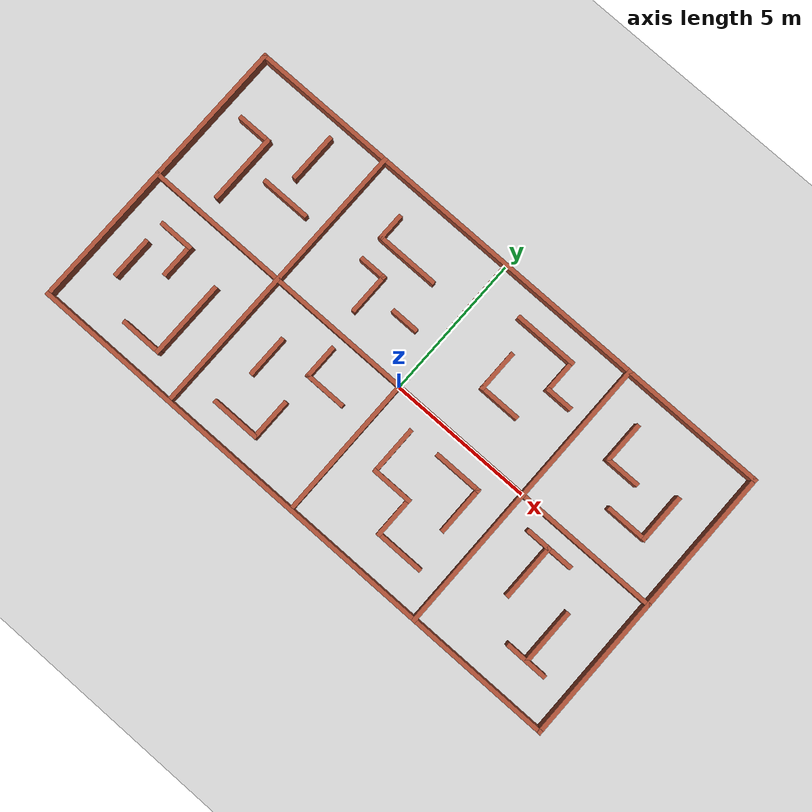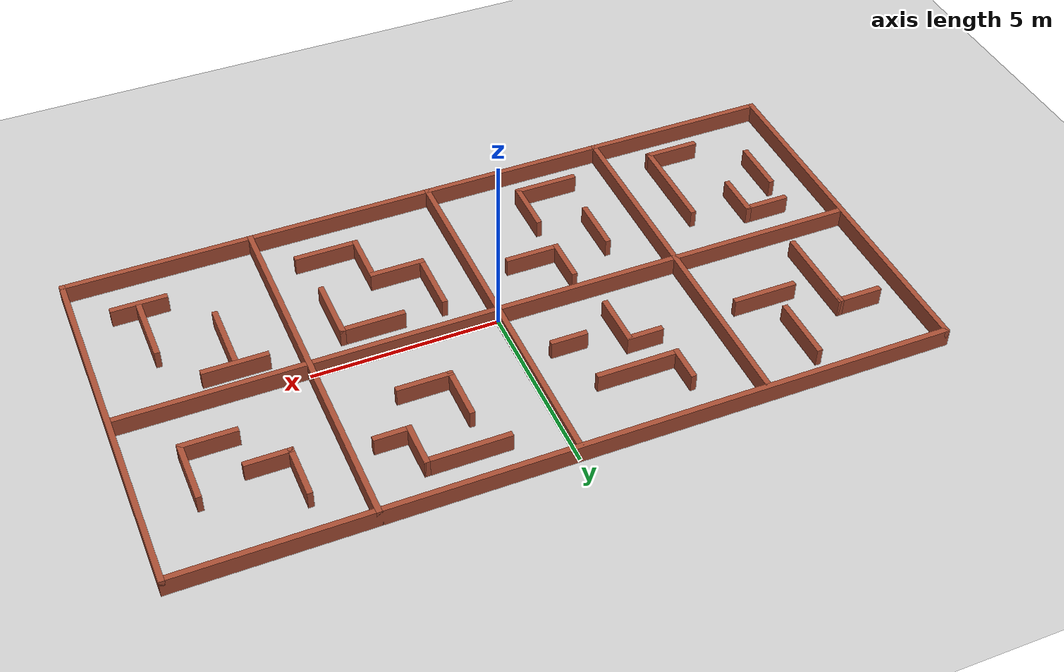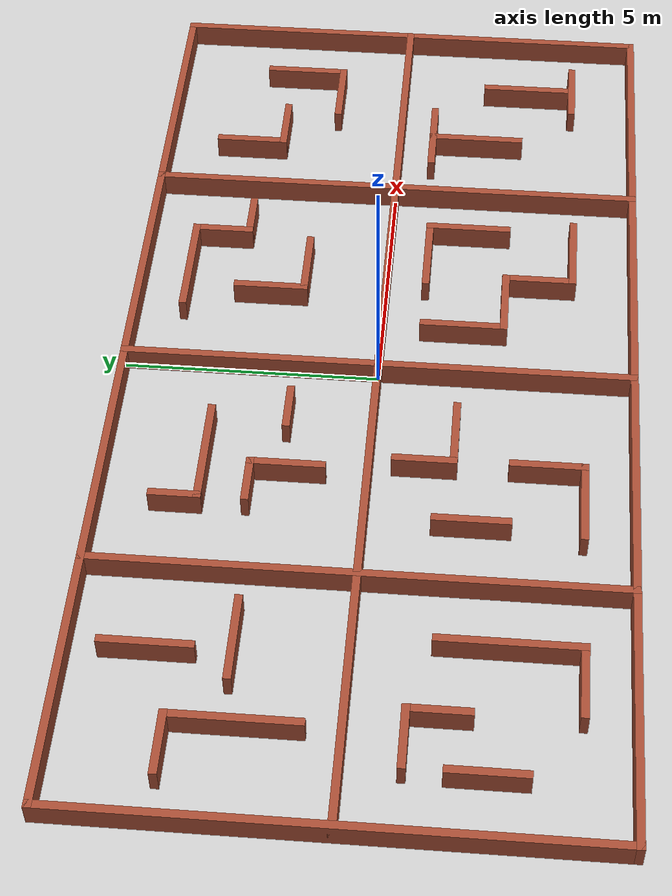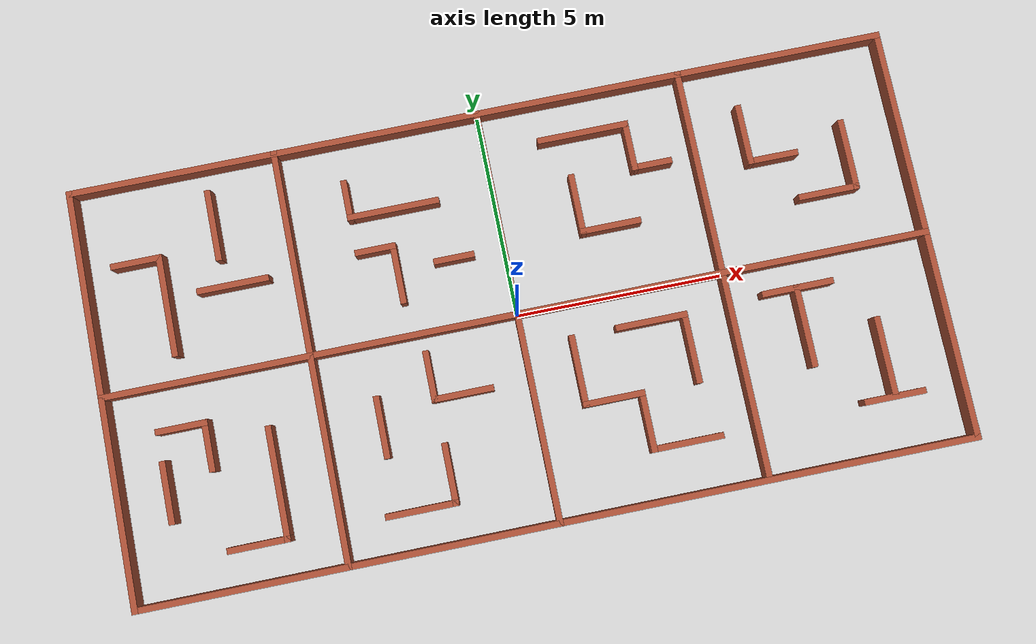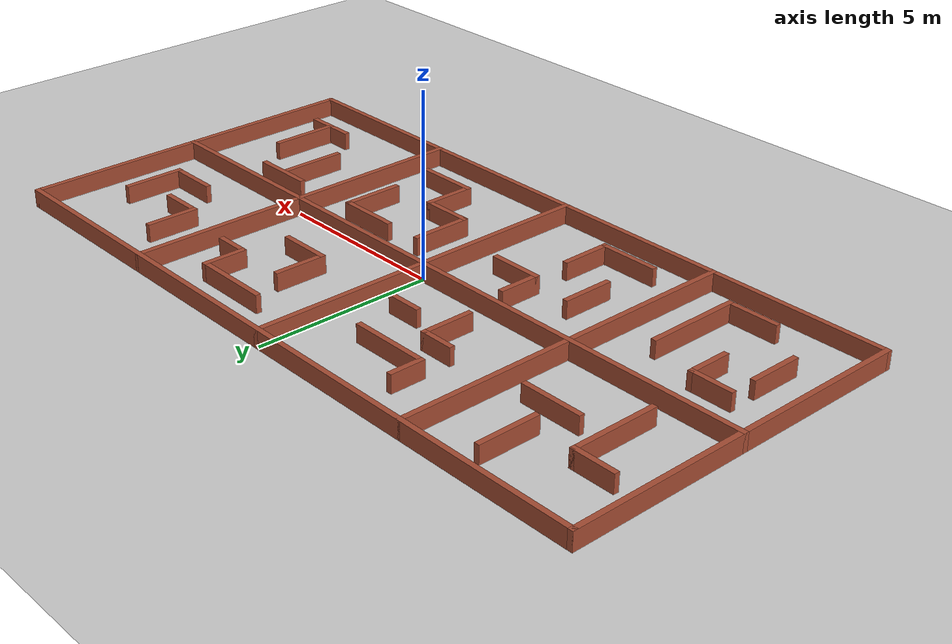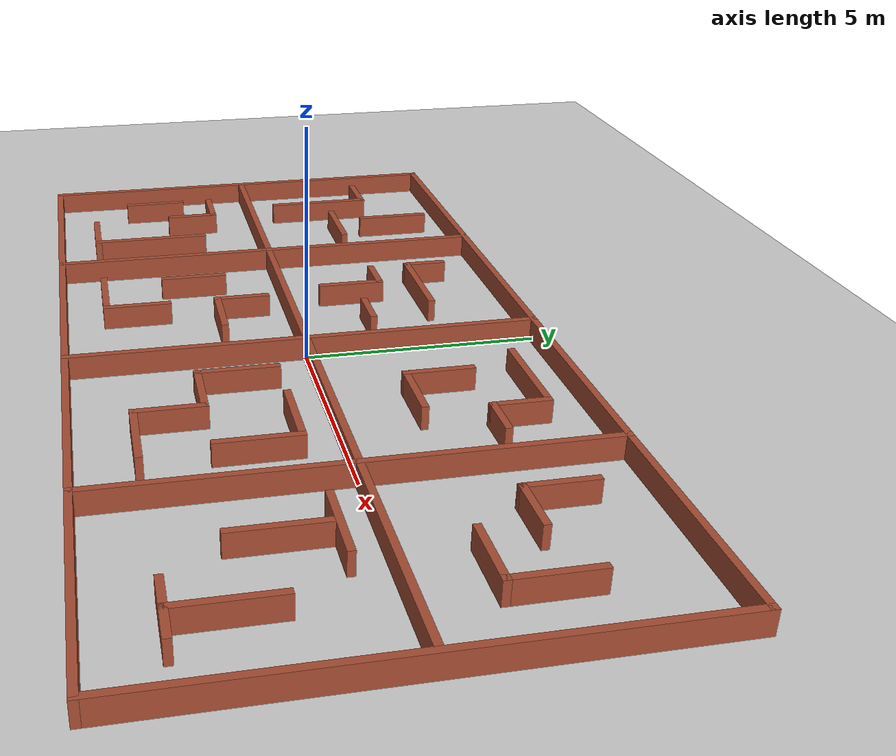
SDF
<sdf version="1.7">
 <world name="default">
  <light name="sun" type="directional">
   <pose>0 0 10 0 -0 0</pose>
   <diffuse>0.8 0.8 0.8 1</diffuse>
   <specular>0.2 0.2 0.2 1</specular>
   <attenuation>
    <range>1000</range>
    <constant>0.9</constant>
    <linear>0.01</linear>
    <quadratic>0.001</quadratic>
   </attenuation>
   <direction>-0.5 0.1 -0.9</direction>
   <spot><inner_angle>0</inner_angle><outer_angle>0</outer_angle><falloff>0</falloff></spot>
  </light>
  <model name="ground_plane">
   <static>1</static>
   <link name="link">
    <collision name="collision">
     <geometry><plane><normal>0 0 1</normal><size>100 100</size></plane></geometry>
     <surface>
      <contact><collide_bitmask>65535</collide_bitmask></contact>
      <friction><ode><mu>100</mu><mu2>50</mu2></ode></friction>
     </surface>
    </collision>
    <visual name="visual">
     <cast_shadows>0</cast_shadows>
     <geometry><plane><normal>0 0 1</normal><size>100 100</size></plane></geometry>
     <material>
      <script><uri>file://media/materials/scripts/gazebo.material</uri><name>Gazebo/Grey</name></script>
     </material>
    </visual>
   </link>
  </model>
  <gravity>0 0 -9.8</gravity>
  <magnetic_field>6e-06 2.3e-05 -4.2e-05</magnetic_field>
  <atmosphere type="adiabatic"/>
  <physics type="ode">
   <max_step_size>0.001</max_step_size>
   <real_time_factor>1</real_time_factor>
   <real_time_update_rate>1000</real_time_update_rate>
  </physics>
  <scene><ambient>0.4 0.4 0.4 1</ambient><background>0.7 0.7 0.7 1</background><shadows>1</shadows></scene>
  <spherical_coordinates>
   <surface_model>EARTH_WGS84</surface_model>
   <latitude_deg>0</latitude_deg>
   <longitude_deg>0</longitude_deg>
   <elevation>0</elevation>
   <heading_deg>0</heading_deg>
  </spherical_coordinates>
  <model name="turtlebot3_multi_map">
   <link name="Wall_11">
    <collision name="Wall_11_Collision">
     <geometry><box><size>10.15 0.15 0.5</size></box></geometry>
     <pose>0 0 0.25 0 -0 0</pose>
    </collision>
    <visual name="Wall_11_Visual">
     <pose>0 0 0.25 0 -0 0</pose>
     <geometry><box><size>10.15 0.15 0.5</size></box></geometry>
     <material>
      <script><uri>file://media/materials/scripts/gazebo.material</uri><name>Gazebo/Bricks</name></script>
      <ambient>1 1 1 1</ambient>
     </material>
     <meta><layer>0</layer></meta>
    </visual>
    <pose>5 0 0 0 -0 1.5708</pose>
   </link>
   <link name="Wall_13">
    <collision name="Wall_13_Collision">
     <geometry><box><size>10.15 0.15 0.5</size></box></geometry>
     <pose>0 0 0.25 0 -0 0</pose>
    </collision>
    <visual name="Wall_13_Visual">
     <pose>0 0 0.25 0 -0 0</pose>
     <geometry><box><size>10.15 0.15 0.5</size></box></geometry>
     <material>
      <script><uri>file://media/materials/scripts/gazebo.material</uri><name>Gazebo/Bricks</name></script>
      <ambient>1 1 1 1</ambient>
     </material>
     <meta><layer>0</layer></meta>
    </visual>
    <pose>0 0 0 0 -0 -1.5708</pose>
   </link>
   <link name="Wall_15">
    <collision name="Wall_15_Collision">
     <geometry><box><size>10.15 0.15 0.5</size></box></geometry>
     <pose>0 0 0.25 0 -0 0</pose>
    </collision>
    <visual name="Wall_15_Visual">
     <pose>0 0 0.25 0 -0 0</pose>
     <geometry><box><size>10.15 0.15 0.5</size></box></geometry>
     <material>
      <script><uri>file://media/materials/scripts/gazebo.material</uri><name>Gazebo/Bricks</name></script>
      <ambient>1 1 1 1</ambient>
     </material>
     <meta><layer>0</layer></meta>
    </visual>
    <pose>-5 0 0 0 -0 -1.5708</pose>
   </link>
   <link name="Wall_17">
    <collision name="Wall_17_Collision">
     <geometry><box><size>1.25 0.15 0.5</size></box></geometry>
     <pose>0 0 0.25 0 -0 0</pose>
    </collision>
    <visual name="Wall_17_Visual">
     <pose>0 0 0.25 0 -0 0</pose>
     <geometry><box><size>1.25 0.15 0.5</size></box></geometry>
     <material>
      <script><uri>file://media/materials/scripts/gazebo.material</uri><name>Gazebo/Bricks</name></script>
      <ambient>1 1 1 1</ambient>
     </material>
     <meta><layer>0</layer></meta>
    </visual>
    <pose>-8.68 3.043 0 0 -0 0</pose>
   </link>
   <link name="Wall_18">
    <collision name="Wall_18_Collision">
     <geometry><box><size>2.5 0.15 0.5</size></box></geometry>
     <pose>0 0 0.25 0 -0 0</pose>
    </collision>
    <visual name="Wall_18_Visual">
     <pose>0 0 0.25 0 -0 0</pose>
     <geometry><box><size>2.5 0.15 0.5</size></box></geometry>
     <material>
      <script><uri>file://media/materials/scripts/gazebo.material</uri><name>Gazebo/Bricks</name></script>
      <ambient>1 1 1 1</ambient>
     </material>
     <meta><layer>0</layer></meta>
    </visual>
    <pose>-8.13 1.868 0 0 -0 -1.5708</pose>
   </link>
   <link name="Wall_20">
    <collision name="Wall_20_Collision">
     <geometry><box><size>1.75 0.15 0.5</size></box></geometry>
     <pose>0 0 0.25 0 -0 0</pose>
    </collision>
    <visual name="Wall_20_Visual">
     <pose>0 0 0.25 0 -0 0</pose>
     <geometry><box><size>1.75 0.15 0.5</size></box></geometry>
     <material>
      <script><uri>file://media/materials/scripts/gazebo.material</uri><name>Gazebo/Bricks</name></script>
      <ambient>1 1 1 1</ambient>
     </material>
     <meta><layer>0</layer></meta>
    </visual>
    <pose>-6.51 2.048 0 0 -0 0</pose>
   </link>
   <link name="Wall_22">
    <collision name="Wall_22_Collision">
     <geometry><box><size>1.75 0.15 0.5</size></box></geometry>
     <pose>0 0 0.25 0 -0 0</pose>
    </collision>
    <visual name="Wall_22_Visual">
     <pose>0 0 0.25 0 -0 0</pose>
     <geometry><box><size>1.75 0.15 0.5</size></box></geometry>
     <material>
      <script><uri>file://media/materials/scripts/gazebo.material</uri><name>Gazebo/Bricks</name></script>
      <ambient>1 1 1 1</ambient>
     </material>
     <meta><layer>0</layer></meta>
    </visual>
    <pose>-6.732 3.561 0 0 -0 -1.5708</pose>
   </link>
   <link name="Wall_24">
    <collision name="Wall_24_Collision">
     <geometry><box><size>1 0.15 0.5</size></box></geometry>
     <pose>0 0 0.25 0 -0 0</pose>
    </collision>
    <visual name="Wall_24_Visual">
     <pose>0 0 0.25 0 -0 0</pose>
     <geometry><box><size>1 0.15 0.5</size></box></geometry>
     <material>
      <script><uri>file://media/materials/scripts/gazebo.material</uri><name>Gazebo/Bricks</name></script>
      <ambient>1 1 1 1</ambient>
     </material>
     <meta><layer>0</layer></meta>
    </visual>
    <pose>-3.471 3.52 0 0 -0 -1.5708</pose>
   </link>
   <link name="Wall_25">
    <collision name="Wall_25_Collision">
     <geometry><box><size>2.25 0.15 0.5</size></box></geometry>
     <pose>0 0 0.25 0 -0 0</pose>
    </collision>
    <visual name="Wall_25_Visual">
     <pose>0 0 0.25 0 -0 0</pose>
     <geometry><box><size>2.25 0.15 0.5</size></box></geometry>
     <material>
      <script><uri>file://media/materials/scripts/gazebo.material</uri><name>Gazebo/Bricks</name></script>
      <ambient>1 1 1 1</ambient>
     </material>
     <meta><layer>0</layer></meta>
    </visual>
    <pose>-2.421 3.095 0 0 -0 0</pose>
   </link>
   <link name="Wall_27">
    <collision name="Wall_27_Collision">
     <geometry><box><size>1 0.15 0.5</size></box></geometry>
     <pose>0 0 0.25 0 -0 0</pose>
    </collision>
    <visual name="Wall_27_Visual">
     <pose>0 0 0.25 0 -0 0</pose>
     <geometry><box><size>1 0.15 0.5</size></box></geometry>
     <material>
      <script><uri>file://media/materials/scripts/gazebo.material</uri><name>Gazebo/Bricks</name></script>
      <ambient>1 1 1 1</ambient>
     </material>
     <meta><layer>0</layer></meta>
    </visual>
    <pose>-3.023 2.21 0 0 -0 0</pose>
   </link>
   <link name="Wall_28">
    <collision name="Wall_28_Collision">
     <geometry><box><size>1.5 0.15 0.5</size></box></geometry>
     <pose>0 0 0.25 0 -0 0</pose>
    </collision>
    <visual name="Wall_28_Visual">
     <pose>0 0 0.25 0 -0 0</pose>
     <geometry><box><size>1.5 0.15 0.5</size></box></geometry>
     <material>
      <script><uri>file://media/materials/scripts/gazebo.material</uri><name>Gazebo/Bricks</name></script>
      <ambient>1 1 1 1</ambient>
     </material>
     <meta><layer>0</layer></meta>
    </visual>
    <pose>-2.598 1.535 0 0 -0 -1.5708</pose>
   </link>
   <link name="Wall_30">
    <collision name="Wall_30_Collision">
     <geometry><box><size>1 0.15 0.5</size></box></geometry>
     <pose>0 0 0.25 0 -0 0</pose>
    </collision>
    <visual name="Wall_30_Visual">
     <pose>0 0 0.25 0 -0 0</pose>
     <geometry><box><size>1 0.15 0.5</size></box></geometry>
     <material>
      <script><uri>file://media/materials/scripts/gazebo.material</uri><name>Gazebo/Bricks</name></script>
      <ambient>1 1 1 1</ambient>
     </material>
     <meta><layer>0</layer></meta>
    </visual>
    <pose>-1.218 1.632 0 0 -0 0</pose>
   </link>
   <link name="Wall_32">
    <collision name="Wall_32_Collision">
     <geometry><box><size>2.25 0.15 0.5</size></box></geometry>
     <pose>0 0 0.25 0 -0 0</pose>
    </collision>
    <visual name="Wall_32_Visual">
     <pose>0 0 0.25 0 -0 0</pose>
     <geometry><box><size>2.25 0.15 0.5</size></box></geometry>
     <material>
      <script><uri>file://media/materials/scripts/gazebo.material</uri><name>Gazebo/Bricks</name></script>
      <ambient>1 1 1 1</ambient>
     </material>
     <meta><layer>0</layer></meta>
    </visual>
    <pose>2.437 4.038 0 0 -0 0</pose>
   </link>
   <link name="Wall_33">
    <collision name="Wall_33_Collision">
     <geometry><box><size>1.25 0.15 0.5</size></box></geometry>
     <pose>0 0 0.25 0 -0 0</pose>
    </collision>
    <visual name="Wall_33_Visual">
     <pose>0 0 0.25 0 -0 0</pose>
     <geometry><box><size>1.25 0.15 0.5</size></box></geometry>
     <material>
      <script><uri>file://media/materials/scripts/gazebo.material</uri><name>Gazebo/Bricks</name></script>
      <ambient>1 1 1 1</ambient>
     </material>
     <meta><layer>0</layer></meta>
    </visual>
    <pose>3.487 3.488 0 0 -0 -1.5708</pose>
   </link>
   <link name="Wall_34">
    <collision name="Wall_34_Collision">
     <geometry><box><size>1 0.15 0.5</size></box></geometry>
     <pose>0 0 0.25 0 -0 0</pose>
    </collision>
    <visual name="Wall_34_Visual">
     <pose>0 0 0.25 0 -0 0</pose>
     <geometry><box><size>1 0.15 0.5</size></box></geometry>
     <material>
      <script><uri>file://media/materials/scripts/gazebo.material</uri><name>Gazebo/Bricks</name></script>
      <ambient>1 1 1 1</ambient>
     </material>
     <meta><layer>0</layer></meta>
    </visual>
    <pose>3.912 2.938 0 0 -0 0</pose>
   </link>
   <link name="Wall_38">
    <collision name="Wall_38_Collision">
     <geometry><box><size>1.5 0.15 0.5</size></box></geometry>
     <pose>0 0 0.25 0 -0 0</pose>
    </collision>
    <visual name="Wall_38_Visual">
     <pose>0 0 0.25 0 -0 0</pose>
     <geometry><box><size>1.5 0.15 0.5</size></box></geometry>
     <material>
      <script><uri>file://media/materials/scripts/gazebo.material</uri><name>Gazebo/Bricks</name></script>
      <ambient>1 1 1 1</ambient>
     </material>
     <meta><layer>0</layer></meta>
    </visual>
    <pose>1.942 2.322 0 0 -0 -1.5708</pose>
   </link>
   <link name="Wall_39">
    <collision name="Wall_39_Collision">
     <geometry><box><size>1.5 0.15 0.5</size></box></geometry>
     <pose>0 0 0.25 0 -0 0</pose>
    </collision>
    <visual name="Wall_39_Visual">
     <pose>0 0 0.25 0 -0 0</pose>
     <geometry><box><size>1.5 0.15 0.5</size></box></geometry>
     <material>
      <script><uri>file://media/materials/scripts/gazebo.material</uri><name>Gazebo/Bricks</name></script>
      <ambient>1 1 1 1</ambient>
     </material>
     <meta><layer>0</layer></meta>
    </visual>
    <pose>2.617 1.647 0 0 -0 0</pose>
   </link>
   <link name="Wall_4">
    <collision name="Wall_4_Collision">
     <geometry><box><size>20.15 0.15 0.5</size></box></geometry>
     <pose>0 0 0.25 0 -0 0</pose>
    </collision>
    <visual name="Wall_4_Visual">
     <pose>0 0 0.25 0 -0 0</pose>
     <geometry><box><size>20.15 0.15 0.5</size></box></geometry>
     <material>
      <script><uri>file://media/materials/scripts/gazebo.material</uri><name>Gazebo/Bricks</name></script>
      <ambient>1 1 1 1</ambient>
     </material>
     <meta><layer>0</layer></meta>
    </visual>
    <pose>0 5 0 0 -0 0</pose>
   </link>
   <link name="Wall_41">
    <collision name="Wall_41_Collision">
     <geometry><box><size>1.5 0.15 0.5</size></box></geometry>
     <pose>0 0 0.25 0 -0 0</pose>
    </collision>
    <visual name="Wall_41_Visual">
     <pose>0 0 0.25 0 -0 0</pose>
     <geometry><box><size>1.5 0.15 0.5</size></box></geometry>
     <material>
      <script><uri>file://media/materials/scripts/gazebo.material</uri><name>Gazebo/Bricks</name></script>
      <ambient>1 1 1 1</ambient>
     </material>
     <meta><layer>0</layer></meta>
    </visual>
    <pose>6.267 3.201 0 0 -0 -1.5708</pose>
   </link>
   <link name="Wall_42">
    <collision name="Wall_42_Collision">
     <geometry><box><size>1.25 0.15 0.5</size></box></geometry>
     <pose>0 0 0.25 0 -0 0</pose>
    </collision>
    <visual name="Wall_42_Visual">
     <pose>0 0 0.25 0 -0 0</pose>
     <geometry><box><size>1.25 0.15 0.5</size></box></geometry>
     <material>
      <script><uri>file://media/materials/scripts/gazebo.material</uri><name>Gazebo/Bricks</name></script>
      <ambient>1 1 1 1</ambient>
     </material>
     <meta><layer>0</layer></meta>
    </visual>
    <pose>6.817 2.526 0 0 -0 0</pose>
   </link>
   <link name="Wall_44">
    <collision name="Wall_44_Collision">
     <geometry><box><size>1.75 0.15 0.5</size></box></geometry>
     <pose>0 0 0.25 0 -0 0</pose>
    </collision>
    <visual name="Wall_44_Visual">
     <pose>0 0 0.25 0 -0 0</pose>
     <geometry><box><size>1.75 0.15 0.5</size></box></geometry>
     <material>
      <script><uri>file://media/materials/scripts/gazebo.material</uri><name>Gazebo/Bricks</name></script>
      <ambient>1 1 1 1</ambient>
     </material>
     <meta><layer>0</layer></meta>
    </visual>
    <pose>8.627 2.22 0 0 -0 -1.5708</pose>
   </link>
   <link name="Wall_45">
    <collision name="Wall_45_Collision">
     <geometry><box><size>1.5 0.15 0.5</size></box></geometry>
     <pose>0 0 0.25 0 -0 0</pose>
    </collision>
    <visual name="Wall_45_Visual">
     <pose>0 0 0.25 0 -0 0</pose>
     <geometry><box><size>1.5 0.15 0.5</size></box></geometry>
     <material>
      <script><uri>file://media/materials/scripts/gazebo.material</uri><name>Gazebo/Bricks</name></script>
      <ambient>1 1 1 1</ambient>
     </material>
     <meta><layer>0</layer></meta>
    </visual>
    <pose>7.952 1.42 0 0 -0 3.14159</pose>
   </link>
   <link name="Wall_47">
    <collision name="Wall_47_Collision">
     <geometry><box><size>1.25 0.15 0.5</size></box></geometry>
     <pose>0 0 0.25 0 -0 0</pose>
    </collision>
    <visual name="Wall_47_Visual">
     <pose>0 0 0.25 0 -0 0</pose>
     <geometry><box><size>1.25 0.15 0.5</size></box></geometry>
     <material>
      <script><uri>file://media/materials/scripts/gazebo.material</uri><name>Gazebo/Bricks</name></script>
      <ambient>1 1 1 1</ambient>
     </material>
     <meta><layer>0</layer></meta>
    </visual>
    <pose>-8.264 -1.051 0 0 -0 0</pose>
   </link>
   <link name="Wall_48">
    <collision name="Wall_48_Collision">
     <geometry><box><size>1.25 0.15 0.5</size></box></geometry>
     <pose>0 0 0.25 0 -0 0</pose>
    </collision>
    <visual name="Wall_48_Visual">
     <pose>0 0 0.25 0 -0 0</pose>
     <geometry><box><size>1.25 0.15 0.5</size></box></geometry>
     <material>
      <script><uri>file://media/materials/scripts/gazebo.material</uri><name>Gazebo/Bricks</name></script>
      <ambient>1 1 1 1</ambient>
     </material>
     <meta><layer>0</layer></meta>
    </visual>
    <pose>-7.714 -1.601 0 0 -0 -1.5708</pose>
   </link>
   <link name="Wall_5">
    <collision name="Wall_5_Collision">
     <geometry><box><size>10.15 0.15 0.5</size></box></geometry>
     <pose>0 0 0.25 0 -0 0</pose>
    </collision>
    <visual name="Wall_5_Visual">
     <pose>0 0 0.25 0 -0 0</pose>
     <geometry><box><size>10.15 0.15 0.5</size></box></geometry>
     <material>
      <script><uri>file://media/materials/scripts/gazebo.material</uri><name>Gazebo/Bricks</name></script>
      <ambient>1 1 1 1</ambient>
     </material>
     <meta><layer>0</layer></meta>
    </visual>
    <pose>10 0 0 0 -0 -1.5708</pose>
   </link>
   <link name="Wall_50">
    <collision name="Wall_50_Collision">
     <geometry><box><size>1.5 0.15 0.5</size></box></geometry>
     <pose>0 0 0.25 0 -0 0</pose>
    </collision>
    <visual name="Wall_50_Visual">
     <pose>0 0 0.25 0 -0 0</pose>
     <geometry><box><size>1.5 0.15 0.5</size></box></geometry>
     <material>
      <script><uri>file://media/materials/scripts/gazebo.material</uri><name>Gazebo/Bricks</name></script>
      <ambient>1 1 1 1</ambient>
     </material>
     <meta><layer>0</layer></meta>
    </visual>
    <pose>-8.837 -2.49 0 0 -0 -1.5708</pose>
   </link>
   <link name="Wall_52">
    <collision name="Wall_52_Collision">
     <geometry><box><size>2.75 0.15 0.5</size></box></geometry>
     <pose>0 0 0.25 0 -0 0</pose>
    </collision>
    <visual name="Wall_52_Visual">
     <pose>0 0 0.25 0 -0 0</pose>
     <geometry><box><size>2.75 0.15 0.5</size></box></geometry>
     <material>
      <script><uri>file://media/materials/scripts/gazebo.material</uri><name>Gazebo/Bricks</name></script>
      <ambient>1 1 1 1</ambient>
     </material>
     <meta><layer>0</layer></meta>
    </visual>
    <pose>-6.269 -2.791 0 0 -0 -1.5708</pose>
   </link>
   <link name="Wall_53">
    <collision name="Wall_53_Collision">
     <geometry><box><size>1.5 0.15 0.5</size></box></geometry>
     <pose>0 0 0.25 0 -0 0</pose>
    </collision>
    <visual name="Wall_53_Visual">
     <pose>0 0 0.25 0 -0 0</pose>
     <geometry><box><size>1.5 0.15 0.5</size></box></geometry>
     <material>
      <script><uri>file://media/materials/scripts/gazebo.material</uri><name>Gazebo/Bricks</name></script>
      <ambient>1 1 1 1</ambient>
     </material>
     <meta><layer>0</layer></meta>
    </visual>
    <pose>-6.944 -4.091 0 0 -0 3.14159</pose>
   </link>
   <link name="Wall_56">
    <collision name="Wall_56_Collision">
     <geometry><box><size>1.5 0.15 0.5</size></box></geometry>
     <pose>0 0 0.25 0 -0 0</pose>
    </collision>
    <visual name="Wall_56_Visual">
     <pose>0 0 0.25 0 -0 0</pose>
     <geometry><box><size>1.5 0.15 0.5</size></box></geometry>
     <material>
      <script><uri>file://media/materials/scripts/gazebo.material</uri><name>Gazebo/Bricks</name></script>
      <ambient>1 1 1 1</ambient>
     </material>
     <meta><layer>0</layer></meta>
    </visual>
    <pose>-3.656 -1.98873 0 0 -0 -1.5708</pose>
   </link>
   <link name="Wall_58">
    <collision name="Wall_58_Collision">
     <geometry><box><size>1.75 0.15 0.5</size></box></geometry>
     <pose>0 0 0.25 0 -0 0</pose>
    </collision>
    <visual name="Wall_58_Visual">
     <pose>0 0 0.25 0 -0 0</pose>
     <geometry><box><size>1.75 0.15 0.5</size></box></geometry>
     <material>
      <script><uri>file://media/materials/scripts/gazebo.material</uri><name>Gazebo/Bricks</name></script>
      <ambient>1 1 1 1</ambient>
     </material>
     <meta><layer>0</layer></meta>
    </visual>
    <pose>-3.087 -4.058 0 0 -0 0</pose>
   </link>
   <link name="Wall_6">
    <collision name="Wall_6_Collision">
     <geometry><box><size>20.15 0.15 0.5</size></box></geometry>
     <pose>0 0 0.25 0 -0 0</pose>
    </collision>
    <visual name="Wall_6_Visual">
     <pose>0 0 0.25 0 -0 0</pose>
     <geometry><box><size>20.15 0.15 0.5</size></box></geometry>
     <material>
      <script><uri>file://media/materials/scripts/gazebo.material</uri><name>Gazebo/Bricks</name></script>
      <ambient>1 1 1 1</ambient>
     </material>
     <meta><layer>0</layer></meta>
    </visual>
    <pose>0 -5 0 0 -0 3.14159</pose>
   </link>
   <link name="Wall_61">
    <collision name="Wall_61_Collision">
     <geometry><box><size>1.25 0.15 0.5</size></box></geometry>
     <pose>0 0 0.25 0 -0 0</pose>
    </collision>
    <visual name="Wall_61_Visual">
     <pose>0 0 0.25 0 -0 0</pose>
     <geometry><box><size>1.25 0.15 0.5</size></box></geometry>
     <material>
      <script><uri>file://media/materials/scripts/gazebo.material</uri><name>Gazebo/Bricks</name></script>
      <ambient>1 1 1 1</ambient>
     </material>
     <meta><layer>0</layer></meta>
    </visual>
    <pose>-2.314 -1.046 0 0 -0 -1.5708</pose>
   </link>
   <link name="Wall_62">
    <collision name="Wall_62_Collision">
     <geometry><box><size>1.5 0.15 0.5</size></box></geometry>
     <pose>0 0 0.25 0 -0 0</pose>
    </collision>
    <visual name="Wall_62_Visual">
     <pose>0 0 0.25 0 -0 0</pose>
     <geometry><box><size>1.5 0.15 0.5</size></box></geometry>
     <material>
      <script><uri>file://media/materials/scripts/gazebo.material</uri><name>Gazebo/Bricks</name></script>
      <ambient>1 1 1 1</ambient>
     </material>
     <meta><layer>0</layer></meta>
    </visual>
    <pose>-1.639 -1.596 0 0 -0 0</pose>
   </link>
   <link name="Wall_64">
    <collision name="Wall_64_Collision">
     <geometry><box><size>1.75 0.15 0.5</size></box></geometry>
     <pose>0 0 0.25 0 -0 0</pose>
    </collision>
    <visual name="Wall_64_Visual">
     <pose>0 0 0.25 0 -0 0</pose>
     <geometry><box><size>1.75 0.15 0.5</size></box></geometry>
     <material>
      <script><uri>file://media/materials/scripts/gazebo.material</uri><name>Gazebo/Bricks</name></script>
      <ambient>1 1 1 1</ambient>
     </material>
     <meta><layer>0</layer></meta>
    </visual>
    <pose>1.155 -1.62 0 0 -0 -1.5708</pose>
   </link>
   <link name="Wall_65">
    <collision name="Wall_65_Collision">
     <geometry><box><size>1.5 0.15 0.5</size></box></geometry>
     <pose>0 0 0.25 0 -0 0</pose>
    </collision>
    <visual name="Wall_65_Visual">
     <pose>0 0 0.25 0 -0 0</pose>
     <geometry><box><size>1.5 0.15 0.5</size></box></geometry>
     <material>
      <script><uri>file://media/materials/scripts/gazebo.material</uri><name>Gazebo/Bricks</name></script>
      <ambient>1 1 1 1</ambient>
     </material>
     <meta><layer>0</layer></meta>
    </visual>
    <pose>1.83 -2.42 0 0 -0 0</pose>
   </link>
   <link name="Wall_66">
    <collision name="Wall_66_Collision">
     <geometry><box><size>1.5 0.15 0.5</size></box></geometry>
     <pose>0 0 0.25 0 -0 0</pose>
    </collision>
    <visual name="Wall_66_Visual">
     <pose>0 0 0.25 0 -0 0</pose>
     <geometry><box><size>1.5 0.15 0.5</size></box></geometry>
     <material>
      <script><uri>file://media/materials/scripts/gazebo.material</uri><name>Gazebo/Bricks</name></script>
      <ambient>1 1 1 1</ambient>
     </material>
     <meta><layer>0</layer></meta>
    </visual>
    <pose>2.505 -3.095 0 0 -0 -1.5708</pose>
   </link>
   <link name="Wall_67">
    <collision name="Wall_67_Collision">
     <geometry><box><size>1.75 0.15 0.5</size></box></geometry>
     <pose>0 0 0.25 0 -0 0</pose>
    </collision>
    <visual name="Wall_67_Visual">
     <pose>0 0 0.25 0 -0 0</pose>
     <geometry><box><size>1.75 0.15 0.5</size></box></geometry>
     <material>
      <script><uri>file://media/materials/scripts/gazebo.material</uri><name>Gazebo/Bricks</name></script>
      <ambient>1 1 1 1</ambient>
     </material>
     <meta><layer>0</layer></meta>
    </visual>
    <pose>3.305 -3.77 0 0 -0 0</pose>
   </link>
   <link name="Wall_69">
    <collision name="Wall_69_Collision">
     <geometry><box><size>1.75 0.15 0.5</size></box></geometry>
     <pose>0 0 0.25 0 -0 0</pose>
    </collision>
    <visual name="Wall_69_Visual">
     <pose>0 0 0.25 0 -0 0</pose>
     <geometry><box><size>1.75 0.15 0.5</size></box></geometry>
     <material>
      <script><uri>file://media/materials/scripts/gazebo.material</uri><name>Gazebo/Bricks</name></script>
      <ambient>1 1 1 1</ambient>
     </material>
     <meta><layer>0</layer></meta>
    </visual>
    <pose>3.089 -0.797 0 0 -0 0</pose>
   </link>
   <link name="Wall_7">
    <collision name="Wall_7_Collision">
     <geometry><box><size>10.15 0.15 0.5</size></box></geometry>
     <pose>0 0 0.25 0 -0 0</pose>
    </collision>
    <visual name="Wall_7_Visual">
     <pose>0 0 0.25 0 -0 0</pose>
     <geometry><box><size>10.15 0.15 0.5</size></box></geometry>
     <material>
      <script><uri>file://media/materials/scripts/gazebo.material</uri><name>Gazebo/Bricks</name></script>
      <ambient>1 1 1 1</ambient>
     </material>
     <meta><layer>0</layer></meta>
    </visual>
    <pose>-10 0 0 0 -0 1.5708</pose>
   </link>
   <link name="Wall_70">
    <collision name="Wall_70_Collision">
     <geometry><box><size>1.75 0.15 0.5</size></box></geometry>
     <pose>0 0 0.25 0 -0 0</pose>
    </collision>
    <visual name="Wall_70_Visual">
     <pose>0 0 0.25 0 -0 0</pose>
     <geometry><box><size>1.75 0.15 0.5</size></box></geometry>
     <material>
      <script><uri>file://media/materials/scripts/gazebo.material</uri><name>Gazebo/Bricks</name></script>
      <ambient>1 1 1 1</ambient>
     </material>
     <meta><layer>0</layer></meta>
    </visual>
    <pose>3.889 -1.597 0 0 -0 -1.5708</pose>
   </link>
   <link name="Wall_72">
    <collision name="Wall_72_Collision">
     <geometry><box><size>1.75 0.15 0.5</size></box></geometry>
     <pose>0 0 0.25 0 -0 0</pose>
    </collision>
    <visual name="Wall_72_Visual">
     <pose>0 0 0.25 0 -0 0</pose>
     <geometry><box><size>1.75 0.15 0.5</size></box></geometry>
     <material>
      <script><uri>file://media/materials/scripts/gazebo.material</uri><name>Gazebo/Bricks</name></script>
      <ambient>1 1 1 1</ambient>
     </material>
     <meta><layer>0</layer></meta>
    </visual>
    <pose>6.674 -0.704 0 0 -0 0</pose>
   </link>
   <link name="Wall_74">
    <collision name="Wall_74_Collision">
     <geometry><box><size>1.5 0.15 0.5</size></box></geometry>
     <pose>0 0 0.25 0 -0 0</pose>
    </collision>
    <visual name="Wall_74_Visual">
     <pose>0 0 0.25 0 -0 0</pose>
     <geometry><box><size>1.5 0.15 0.5</size></box></geometry>
     <material>
      <script><uri>file://media/materials/scripts/gazebo.material</uri><name>Gazebo/Bricks</name></script>
      <ambient>1 1 1 1</ambient>
     </material>
     <meta><layer>0</layer></meta>
    </visual>
    <pose>8.33 -3.688 0 0 -0 0</pose>
   </link>
   <link name="Wall_77">
    <collision name="Wall_77_Collision">
     <geometry><box><size>2 0.15 0.5</size></box></geometry>
     <pose>0 0 0.25 0 -0 0</pose>
    </collision>
    <visual name="Wall_77_Visual">
     <pose>0 0 0.25 0 -0 0</pose>
     <geometry><box><size>2 0.15 0.5</size></box></geometry>
     <material>
      <script><uri>file://media/materials/scripts/gazebo.material</uri><name>Gazebo/Bricks</name></script>
      <ambient>1 1 1 1</ambient>
     </material>
     <meta><layer>0</layer></meta>
    </visual>
    <pose>6.646 -1.64 0 0 -0 -1.5708</pose>
   </link>
   <link name="Wall_79">
    <collision name="Wall_79_Collision">
     <geometry><box><size>2 0.15 0.5</size></box></geometry>
     <pose>0 0 0.25 0 -0 0</pose>
    </collision>
    <visual name="Wall_79_Visual">
     <pose>0 0 0.25 0 -0 0</pose>
     <geometry><box><size>2 0.15 0.5</size></box></geometry>
     <material>
      <script><uri>file://media/materials/scripts/gazebo.material</uri><name>Gazebo/Bricks</name></script>
      <ambient>1 1 1 1</ambient>
     </material>
     <meta><layer>0</layer></meta>
    </visual>
    <pose>8.349 -2.755 0 0 -0 1.5708</pose>
   </link>
   <link name="Wall_81">
    <collision name="Wall_81_Collision">
     <geometry><box><size>1.5 0.15 0.5</size></box></geometry>
     <pose>0 0 0.25 0 -0 0</pose>
    </collision>
    <visual name="Wall_81_Visual">
     <pose>0 0 0.25 0 -0 0</pose>
     <geometry><box><size>1.5 0.15 0.5</size></box></geometry>
     <material>
      <script><uri>file://media/materials/scripts/gazebo.material</uri><name>Gazebo/Bricks</name></script>
      <ambient>1 1 1 1</ambient>
     </material>
     <meta><layer>0</layer></meta>
    </visual>
    <pose>-2.287 -3.383 0 0 -0 1.5708</pose>
   </link>
   <link name="Wall_9">
    <collision name="Wall_9_Collision">
     <geometry><box><size>20.15 0.15 0.5</size></box></geometry>
     <pose>0 0 0.25 0 -0 0</pose>
    </collision>
    <visual name="Wall_9_Visual">
     <pose>0 0 0.25 0 -0 0</pose>
     <geometry><box><size>20.15 0.15 0.5</size></box></geometry>
     <material>
      <script><uri>file://media/materials/scripts/gazebo.material</uri><name>Gazebo/Bricks</name></script>
      <ambient>1 1 1 1</ambient>
     </material>
     <meta><layer>0</layer></meta>
    </visual>
   </link>
   <static>1</static>
  </model>
 </world>
</sdf>
